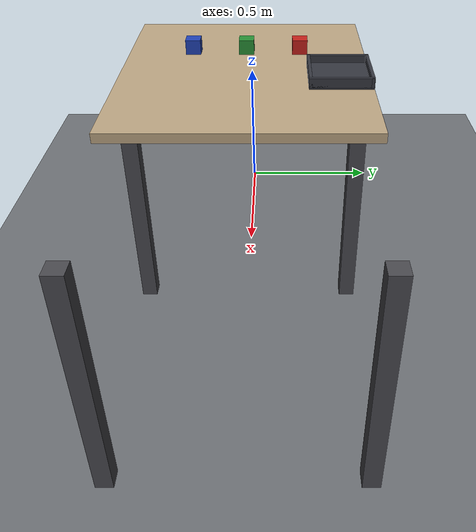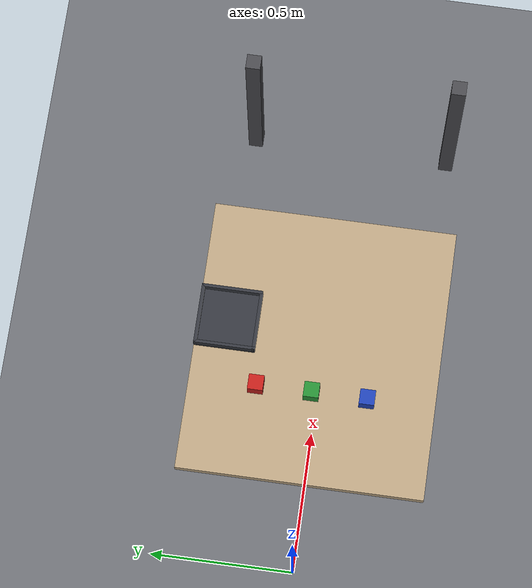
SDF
<?xml version="1.0" encoding="UTF-8"?>
<sdf version="1.9">
  <world name="agr_workcell">
    <plugin filename="gz-sim-physics-system" name="gz::sim::systems::Physics"/>
    <plugin filename="gz-sim-user-commands-system" name="gz::sim::systems::UserCommands"/>
    <plugin filename="gz-sim-scene-broadcaster-system" name="gz::sim::systems::SceneBroadcaster"/>
    <plugin filename="gz-sim-contact-system" name="gz::sim::systems::Contact"/>
    <plugin filename="gz-sim-sensors-system" name="gz::sim::systems::Sensors">
      <render_engine>ogre2</render_engine>
    </plugin>

    <!-- 1 ms steps. A 5 cm block between two gripper pads is a small, stiff
         contact; at the 2 ms the legged world uses it jitters visibly. -->
    <physics type="ode">
      <max_step_size>0.001</max_step_size>
      <real_time_factor>1.0</real_time_factor>
      <real_time_update_rate>1000</real_time_update_rate>
    </physics>
    <gravity>0 0 -9.8</gravity>
    <scene>
      <grid>false</grid><shadows>true</shadows>
      <ambient>0.55 0.55 0.55 1</ambient><background>0.70 0.73 0.78 1</background>
    </scene>

    <model name="ground_plane"><static>true</static><link name="link">
      <collision name="c"><geometry><plane><normal>0 0 1</normal><size>1 1</size></plane></geometry>
        <surface><friction><ode><mu>1.0</mu><mu2>1.0</mu2></ode></friction></surface></collision>
      <visual name="v"><geometry><plane><normal>0 0 1</normal><size>40 40</size></plane></geometry>
        <material><ambient>0.42 0.43 0.45 1</ambient><diffuse>0.42 0.43 0.45 1</diffuse></material></visual>
    </link></model>

    <light name="sunUTC" type="directional">
      <pose>0 0 12 0 0 0</pose><cast_shadows>true</cast_shadows><intensity>1</intensity>
      <direction>-0.4 0.5 -0.85</direction>
      <diffuse>0.95 0.95 0.92 1</diffuse><specular>0.25 0.25 0.25 1</specular>
      <attenuation><range>100</range><linear>0</linear><constant>1</constant><quadratic>0</quadratic></attenuation>
      <spot><inner_angle>0</inner_angle><outer_angle>0</outer_angle><falloff>0</falloff></spot>
    </light>
    <!-- Fill light from the front-left so the wrist camera is not shooting
         into its own shadow when the arm leans over a block. -->
    <light name="fill" type="point">
      <pose>0.6 -1.2 2.0 0 0 0</pose><cast_shadows>false</cast_shadows><intensity>0.6</intensity>
      <diffuse>0.8 0.8 0.85 1</diffuse><specular>0.1 0.1 0.1 1</specular>
      <attenuation><range>12</range><linear>0.1</linear><constant>0.4</constant><quadratic>0.01</quadratic></attenuation>
    </light>

    <!-- ── Work bench ─────────────────────────────────────────────────── -->
    <model name="bench">
      <static>true</static>
      <pose>0.60 0 0 0 0 0</pose>
      <link name="top">
        <pose>0 0 0.7350 0 0 0</pose>
        <collision name="c"><geometry><box><size>0.90 0.80 0.03</size></box></geometry>
          <surface><friction><ode><mu>1.0</mu><mu2>1.0</mu2></ode></friction></surface></collision>
        <visual name="v"><geometry><box><size>0.90 0.80 0.03</size></box></geometry>
          <material><ambient>0.62 0.55 0.44 1</ambient><diffuse>0.72 0.63 0.50 1</diffuse></material></visual>
      </link>
      <link name="leg_0">
        <pose>0.220 0.350 0.3600 0 0 0</pose>
        <collision name="c"><geometry><box><size>0.05 0.05 0.72</size></box></geometry></collision>
        <visual name="v"><geometry><box><size>0.05 0.05 0.72</size></box></geometry>
          <material><ambient>0.28 0.28 0.30 1</ambient><diffuse>0.28 0.28 0.30 1</diffuse></material></visual>
      </link>
      <link name="leg_1">
        <pose>0.220 -0.350 0.3600 0 0 0</pose>
        <collision name="c"><geometry><box><size>0.05 0.05 0.72</size></box></geometry></collision>
        <visual name="v"><geometry><box><size>0.05 0.05 0.72</size></box></geometry>
          <material><ambient>0.28 0.28 0.30 1</ambient><diffuse>0.28 0.28 0.30 1</diffuse></material></visual>
      </link>
      <link name="leg_2">
        <pose>0.980 0.350 0.3600 0 0 0</pose>
        <collision name="c"><geometry><box><size>0.05 0.05 0.72</size></box></geometry></collision>
        <visual name="v"><geometry><box><size>0.05 0.05 0.72</size></box></geometry>
          <material><ambient>0.28 0.28 0.30 1</ambient><diffuse>0.28 0.28 0.30 1</diffuse></material></visual>
      </link>
      <link name="leg_3">
        <pose>0.980 -0.350 0.3600 0 0 0</pose>
        <collision name="c"><geometry><box><size>0.05 0.05 0.72</size></box></geometry></collision>
        <visual name="v"><geometry><box><size>0.05 0.05 0.72</size></box></geometry>
          <material><ambient>0.28 0.28 0.30 1</ambient><diffuse>0.28 0.28 0.30 1</diffuse></material></visual>
      </link>
    </model>

    <!-- ── Drop tray: where picked blocks are placed ──────────────────── -->
    <model name="drop_tray">
      <static>true</static>
      <pose>0.66 0.30 0.7500 0 0 0</pose>
      <link name="link">
        <visual name="floor"><pose>0 0 0.005 0 0 0</pose>
          <geometry><box><size>0.20 0.20 0.01</size></box></geometry>
          <material><ambient>0.15 0.16 0.18 1</ambient><diffuse>0.20 0.21 0.24 1</diffuse></material></visual>
        <collision name="floor"><pose>0 0 0.005 0 0 0</pose>
          <geometry><box><size>0.20 0.20 0.01</size></box></geometry></collision>
        <visual name="w0"><pose> 0.095 0 0.020 0 0 0</pose>
          <geometry><box><size>0.01 0.20 0.03</size></box></geometry>
          <material><ambient>0.15 0.16 0.18 1</ambient><diffuse>0.20 0.21 0.24 1</diffuse></material></visual>
        <collision name="w0"><pose> 0.095 0 0.020 0 0 0</pose>
          <geometry><box><size>0.01 0.20 0.03</size></box></geometry></collision>
        <visual name="w1"><pose>-0.095 0 0.020 0 0 0</pose>
          <geometry><box><size>0.01 0.20 0.03</size></box></geometry>
          <material><ambient>0.15 0.16 0.18 1</ambient><diffuse>0.20 0.21 0.24 1</diffuse></material></visual>
        <collision name="w1"><pose>-0.095 0 0.020 0 0 0</pose>
          <geometry><box><size>0.01 0.20 0.03</size></box></geometry></collision>
        <visual name="w2"><pose>0  0.095 0.020 0 0 0</pose>
          <geometry><box><size>0.20 0.01 0.03</size></box></geometry>
          <material><ambient>0.15 0.16 0.18 1</ambient><diffuse>0.20 0.21 0.24 1</diffuse></material></visual>
        <collision name="w2"><pose>0  0.095 0.020 0 0 0</pose>
          <geometry><box><size>0.20 0.01 0.03</size></box></geometry></collision>
        <visual name="w3"><pose>0 -0.095 0.020 0 0 0</pose>
          <geometry><box><size>0.20 0.01 0.03</size></box></geometry>
          <material><ambient>0.15 0.16 0.18 1</ambient><diffuse>0.20 0.21 0.24 1</diffuse></material></visual>
        <collision name="w3"><pose>0 -0.095 0.020 0 0 0</pose>
          <geometry><box><size>0.20 0.01 0.03</size></box></geometry></collision>
      </link>
    </model>

    <!-- ── Three graspable blocks ─────────────────────────────────────── -->
    <model name="block_red">
      <pose>0.450 0.180 0.7760 0 0 0</pose>
      <link name="link">
        <inertial>
          <mass>0.08</mass>
          <inertia><ixx>3.3e-5</ixx><ixy>0</ixy><ixz>0</ixz><iyy>3.3e-5</iyy><iyz>0</iyz><izz>3.3e-5</izz></inertia>
        </inertial>
        <collision name="c">
          <geometry><box><size>0.05 0.05 0.05</size></box></geometry>
          <surface><friction><ode><mu>1.2</mu><mu2>1.2</mu2></ode></friction></surface>
        </collision>
        <visual name="v">
          <geometry><box><size>0.05 0.05 0.05</size></box></geometry>
          <material><ambient>0.75 0.12 0.10 1</ambient><diffuse>0.75 0.12 0.10 1</diffuse><specular>0.2 0.2 0.2 1</specular></material>
        </visual>
      </link>
    </model>
    <model name="block_green">
      <pose>0.450 0.000 0.7760 0 0 0</pose>
      <link name="link">
        <inertial>
          <mass>0.08</mass>
          <inertia><ixx>3.3e-5</ixx><ixy>0</ixy><ixz>0</ixz><iyy>3.3e-5</iyy><iyz>0</iyz><izz>3.3e-5</izz></inertia>
        </inertial>
        <collision name="c">
          <geometry><box><size>0.05 0.05 0.05</size></box></geometry>
          <surface><friction><ode><mu>1.2</mu><mu2>1.2</mu2></ode></friction></surface>
        </collision>
        <visual name="v">
          <geometry><box><size>0.05 0.05 0.05</size></box></geometry>
          <material><ambient>0.15 0.55 0.20 1</ambient><diffuse>0.15 0.55 0.20 1</diffuse><specular>0.2 0.2 0.2 1</specular></material>
        </visual>
      </link>
    </model>
    <model name="block_blue">
      <pose>0.450 -0.180 0.7760 0 0 0</pose>
      <link name="link">
        <inertial>
          <mass>0.08</mass>
          <inertia><ixx>3.3e-5</ixx><ixy>0</ixy><ixz>0</ixz><iyy>3.3e-5</iyy><iyz>0</iyz><izz>3.3e-5</izz></inertia>
        </inertial>
        <collision name="c">
          <geometry><box><size>0.05 0.05 0.05</size></box></geometry>
          <surface><friction><ode><mu>1.2</mu><mu2>1.2</mu2></ode></friction></surface>
        </collision>
        <visual name="v">
          <geometry><box><size>0.05 0.05 0.05</size></box></geometry>
          <material><ambient>0.12 0.25 0.70 1</ambient><diffuse>0.12 0.25 0.70 1</diffuse><specular>0.2 0.2 0.2 1</specular></material>
        </visual>
      </link>
    </model>

  </world>
</sdf>
